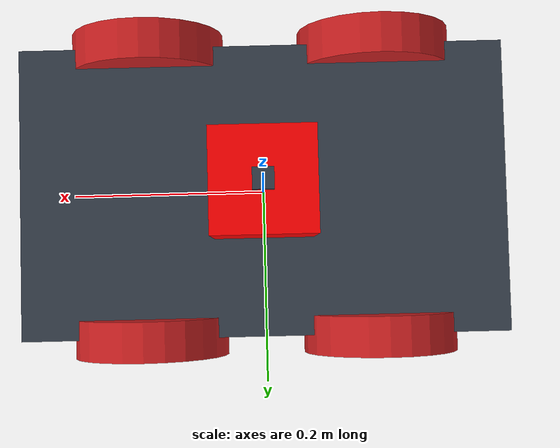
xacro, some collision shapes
<?xml version="1.0"?>
<robot xmlns:xacro="http://www.ros.org/wiki/xacro" name="robot_xacro">
<xacro:include filename="$(find assignment2)/urdf/robot.gazebo"/>

<!-- Properties -->
<xacro:property name="wheel_thickness" value="0.04"/>
<xacro:property name="wheel_radius" value="0.08"/>

<!-- Macros -->
<xacro:macro name="default_inertial" params="mass">
  <inertial>
    <mass value="${mass}"/>
    <origin rpy="0 1.5707 1.5707" xyz="0 0 0"/>
    <inertia ixx="0.0005267" ixy="0" ixz="0" iyy="0.0005267" iyz="0" izz="0.001"/>
  </inertial>
</xacro:macro>

<xacro:macro name="wheel_geometry">
  <geometry>
    <cylinder length="${wheel_thickness}" radius="${wheel_radius}"/>
  </geometry>
</xacro:macro>

<!-- Materials -->
<material name="black">
  <color rgba="0.0 0.0 0.0 1.0"/>
</material>
<material name="blue">
  <color rgba="0.203125 0.23828125 0.28515625 1.0"/>
</material>
<material name="green">
  <color rgba="0.0 0.8 0.0 1.0"/>
</material>
<material name="grey">
  <color rgba="0.2 0.2 0.2 1.0"/>
</material>
<material name="orange">
  <color rgba="1.0 0.423529411765 0.0392156862745 1.0"/>
</material>
<material name="brown">
  <color rgba="0.870588235294 0.811764705882 0.764705882353 1.0"/>
</material>
<material name="red">
  <color rgba="0.80078125 0.12890625 0.1328125 1.0"/>
</material>
<material name="white">
  <color rgba="1.0 1.0 1.0 1.0"/>
</material>

<!-- Robot -->
<link name="link_chassis">
  <!-- Pose and Inertial Matrix -->
  <pose>0 0 0 0 0 0</pose>
  <inertial>
    <mass value="5"/>
    <origin rpy="0 0 0" xyz="0 0 0"/>
    <inertia ixx="0.0395416666667" ixy="0" ixz="0" iyy="0.106208333333" iyz="0" izz="0.106208333333"/>
  </inertial>

  <!-- Body -->
  <collision name="collision_chassis">
    <geometry>
      <box size="0.5 0.3 0.07"/>
    </geometry>
  </collision>
  <visual>
    <origin rpy="0 0 0" xyz="0 0 0"/>
    <geometry>
      <box size="0.5 0.3 0.07"/>
    </geometry>
    <material name="blue"/>
  </visual>
</link>

<!-- Wheel Links -->
<link name="link_right_front_wheel">
  <xacro:default_inertial mass="0.5"/>
  <collision name="link_right_wheel_collision">
    <origin rpy="0 1.5707 1.5707" xyz="0 0 0"/>
    <xacro:wheel_geometry />
  </collision>
  <visual name="link_right_wheel_visual">
    <origin rpy="0 1.5707 1.5707" xyz="0 0 0"/>
    <xacro:wheel_geometry />
    <material name="red"/>
  </visual>
</link>

<link name="link_left_front_wheel">
  <xacro:default_inertial mass="0.5"/>
  <collision name="link_left_wheel_collision">
    <origin rpy="0 1.5707 1.5707" xyz="0 0 0"/>
    <xacro:wheel_geometry />
  </collision>
  <visual name="link_left_wheel_visual">
    <origin rpy="0 1.5707 1.5707" xyz="0 0 0"/>
    <xacro:wheel_geometry />
    <material name="red"/>
  </visual>
</link>

<link name="link_right_rear_wheel">
  <xacro:default_inertial mass="0.5"/>
  <collision name="link_right_wheel_collision">
    <origin rpy="0 1.5707 1.5707" xyz="0 0 0"/>
    <xacro:wheel_geometry />
  </collision>
  <visual name="link_right_wheel_visual">
    <origin rpy="0 1.5707 1.5707" xyz="0 0 0"/>
    <xacro:wheel_geometry />
    <material name="red"/>
  </visual>
</link>

<link name="link_left_rear_wheel">
  <xacro:default_inertial mass="0.5"/>
  <collision name="link_left_wheel_collision">
    <origin rpy="0 1.5707 1.5707" xyz="0 0 0"/>
    <xacro:wheel_geometry />
  </collision>
  <visual name="link_left_wheel_visual">
    <origin rpy="0 1.5707 1.5707" xyz="0 0 0"/>
    <xacro:wheel_geometry />
    <material name="red"/>
  </visual>
</link>

<joint name="joint_right_front_wheel" type="continuous">
  <origin rpy="0 0 0" xyz="0.12 -0.15 0"/>
  <child link="link_right_front_wheel"/>
  <parent link="link_chassis"/>
  <axis rpy="0 0 0" xyz="0 1 0"/>
  <limit effort="2000" velocity="200"/>
  <joint_properties damping="1.0" friction="1.0"/>
</joint>

<joint name="joint_left_front_wheel" type="continuous">
  <origin rpy="0 0 0" xyz="0.12 0.15 0"/>
  <child link="link_left_front_wheel"/>
  <parent link="link_chassis"/>
  <axis rpy="0 0 0" xyz="0 1 0"/>
  <limit effort="2000" velocity="200"/>
  <joint_properties damping="1.0" friction="1.0"/>
</joint>

<joint name="joint_right_rear_wheel" type="continuous">
  <origin rpy="0 0 0" xyz="-0.12 -0.15 0"/>
  <child link="link_right_rear_wheel"/>
  <parent link="link_chassis"/>
  <axis rpy="0 0 0" xyz="0 1 0"/>
  <limit effort="2000" velocity="200"/>
  <joint_properties damping="1.0" friction="1.0"/>
</joint>

<joint name="joint_left_rear_wheel" type="continuous">
  <origin rpy="0 0 0" xyz="-0.12 0.15 0"/>
  <child link="link_left_rear_wheel"/>
  <parent link="link_chassis"/>
  <axis rpy="0 0 0" xyz="0 1 0"/>
  <limit effort="2000" velocity="200"/>
  <joint_properties damping="1.0" friction="1.0"/>
</joint>

<!-- Sensors -->

<!-- Hokuyo -->
<link name="link_hokuyo">
  <collision>
    <origin xyz="0 0 0" rpy="0 0 0"/>
    <geometry>
      <box size="0.1 0.1 0.1"/>
    </geometry>
  </collision>
  <visual>
    <origin xyz="0 0 0" rpy="0 0 0"/>
    <geometry>
      <mesh filename="package://assignment2/meshes/hokuyo.dae"/>
    </geometry>
    <material name="red">
      <color rgba="1 0 0 1"/>
    </material>
  </visual>
  <inertial>
    <mass value="1e-5" />
    <origin xyz="0 0 0" rpy="0 0 0"/>
    <inertia ixx="1e-6" ixy="0" ixz="0" iyy="1e-6" iyz="0" izz="1e-6" />
  </inertial>
</link>

<joint name="joint_hokuyo" type="fixed">
  <axis rpy="0 0 0" xyz="0 0 1" />
  <origin rpy="0 0 0" xyz="0 0 0.1"/>
  <parent link="link_chassis"/>
  <child link="link_hokuyo"/>
</joint>

<!-- RGB Camera -->
<link name="link_camera">
  <collision>
    <origin xyz="0 0 0" rpy="0 0 0"/>
    <geometry>
      <box size="0.02 0.02 0.02"/>
    </geometry>
  </collision>

  <visual>
    <origin xyz="0 0 0" rpy="0 0 0"/>
    <geometry>
      <box size="0.02 0.02 0.02"/>
    </geometry>
    <material name="blue"/>
  </visual>

  <inertial>
    <mass value="0.001" />
    <origin xyz="0 0 0" rpy="0 0 0"/>
    <inertia ixx="0.0" ixy="0" ixz="0" iyy="0.0" iyz="0" izz="0.0" />
  </inertial>
</link>

<link name="link_camera_vertical">
  <collision>
    <origin xyz="0 0 0" rpy="0 0 0"/>
    <geometry>
      <box size="0.01 0.01 0.0"/>
    </geometry>
  </collision>

  <visual>
    <origin xyz="0 0 0" rpy="0 0 0"/>
    <geometry>
      <box size="0.01 0.01 0.0"/>
    </geometry>
    <material name="blue"/>
  </visual>

  <inertial>
    <mass value="0.1" />
    <origin xyz="0 0 0" rpy="0 0 0"/>
    <inertia ixx="0" ixy="0" ixz="0" iyy="0" iyz="0" izz="0" />
  </inertial>
</link>

<joint name="joint_camera" type="continuous">
  <axis rpy="0 0 0" xyz="0 0 1" />
  <origin rpy="0 0 0" xyz="0 0 0"/>
  <parent link="link_camera_vertical"/>
  <child link="link_camera"/>
  <limit effort="1000" velocity="10"/>
  <joint_properties damping="1.0" friction="1.0"/>
</joint>

<joint name="joint_camera_vertical" type="prismatic">
  <axis rpy="0 0 0" xyz="0 0 1" />
  <origin rpy="0 0 0" xyz="0 0 0.15"/>
  <parent link="link_chassis"/>
  <child link="link_camera_vertical"/>
  <limit effort="1000" velocity="0.5" lower="0.0" upper="2.0"/>
  <joint_properties damping="1.0" friction="1.0"/>
</joint>

<!-- Trasmission for camera rotation joint -->
<transmission name="trans_joint_camera">
  <type>transmission_interface/SimpleTransmission</type>
  <actuator name="motor_joint_camera">
    <hardwareInterface>hardware_interface/EffortJointInterface</hardwareInterface>
    <mechanicalReduction>1</mechanicalReduction>
  </actuator>
  <joint name="joint_camera">
    <hardwareInterface>hardware_interface/EffortJointInterface</hardwareInterface>
  </joint>
</transmission>

<!-- Trasmission for camera prismatic joint -->
<transmission name="trans_joint_camera_vertical">
  <type>transmission_interface/SimpleTransmission</type>
  <actuator name="motor_joint_camera_vertical">
    <hardwareInterface>hardware_interface/EffortJointInterface</hardwareInterface>
    <mechanicalReduction>1</mechanicalReduction>
  </actuator>
  <joint name="joint_camera_vertical">
    <hardwareInterface>hardware_interface/EffortJointInterface</hardwareInterface>
  </joint>
</transmission>

</robot>
